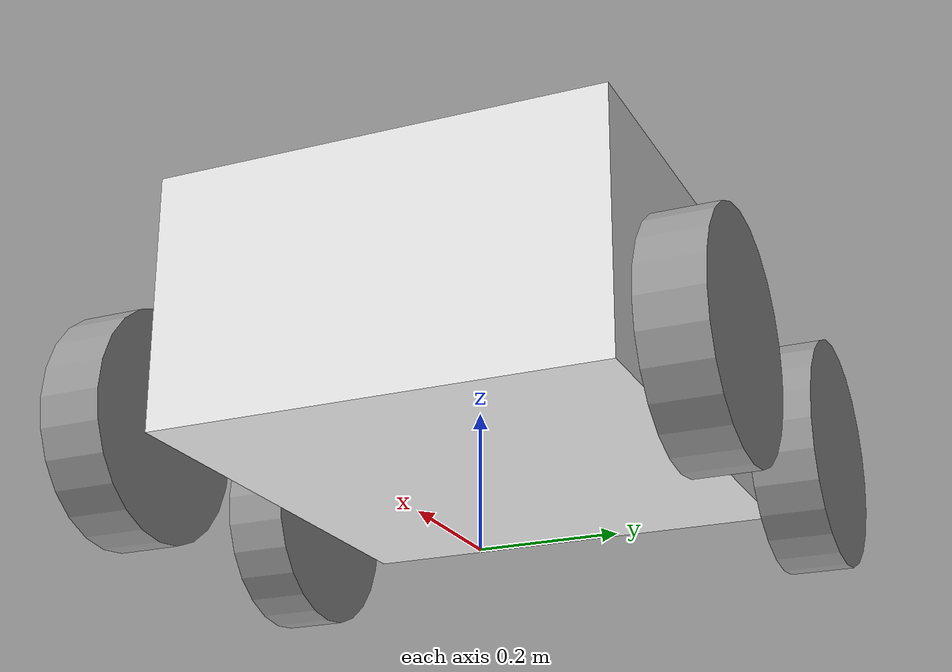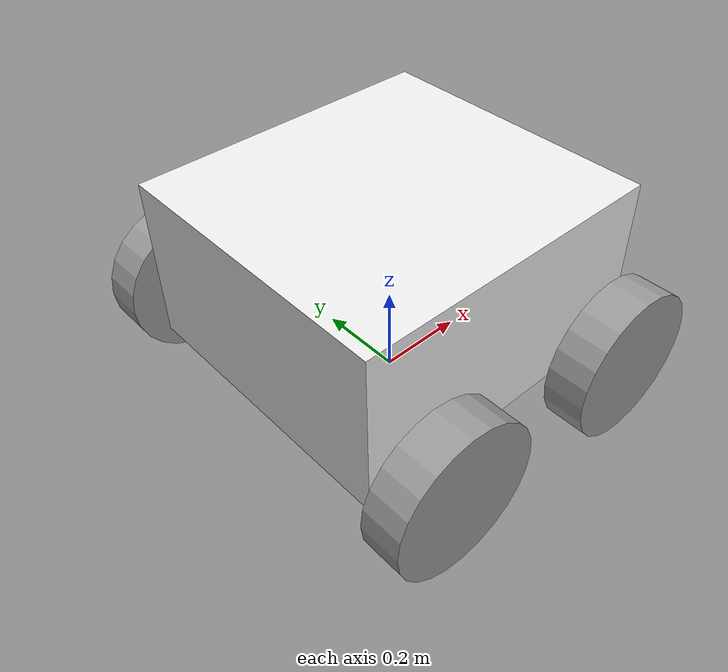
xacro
<?xml version="1.0"?>
<robot xmlns:xacro="http://www.ros.org/wiki/xacro">

    <!-- PARÁMETROS DIMENSIONALES DEL ROBOT -->

    <!-- Dimensiones del chasis principal [metros] -->
    <xacro:property name="base_length" value="0.7"/>      <!-- Largo del chasis (100cm) -->
    <xacro:property name="base_width" value="0.651"/>        <!-- Ancho del chasis (50cm) -->
    <xacro:property name="base_height" value="0.37"/>       <!-- Altura del chasis (30cm) -->

    <!-- Dimensiones de las ruedas [metros] -->
    <xacro:property name="wheel_radius" value="0.165"/>      <!-- Radio de cada rueda (10cm) -->
    <xacro:property name="wheel_length" value="0.09"/>     <!-- Grosor/ancho de rueda (5cm) -->

    <!-- Posicionamiento de ruedas [metros] -->
    <xacro:property name="wheel_y_offset" value="${base_width / 2.0 + wheel_length / 2 + 0.04}"/>  <!-- Distancia desde centro a rueda (4.85cm) -->
    <xacro:property name="wheel_x_offset" value="0.24"/> <!-- Desplazamiento longitudinal (20cm) -->
    <xacro:property name="wheel_z_offset" value="0.05"/>

    <!-- ESTRUCTURA PRINCIPAL DEL ROBOT -->

    <!-- Frame de referencia en el suelo -->
    <link name="base_footprint"/>

    <!-- Chasis principal del robot -->
    <link name="base_link">
        <visual>
            <geometry>
                <box size="${base_length} ${base_width} ${base_height}"/>
            </geometry>
            <!-- Posición: centro del chasis a la mitad de su altura -->
            <origin xyz="0 0 ${base_height / 2.0 }" rpy="0 0 0"/>
            <material name="white"/>
        </visual>
        <!-- Propiedades de inercia para simulación física -->
        <!-- m: masa [kg], l/w/h: dimensiones [m], xyz: centro de masa, rpy: orientación -->
        <xacro:box_inertia m="5.0" l="${2*base_length}" w="${2*base_width}" h="${2*base_height}"
         xyz="0 0 ${2*base_height / 2.0}" rpy="0 0 0" />
        <collision>
            <geometry>
                <box size="${base_length} ${base_width} ${base_height}"/>
            </geometry>
            <origin xyz="0 0 ${base_height / 2.0}" rpy="0 0 0"/>
        </collision>
    </link>

    <!-- MACRO PARA CREAR RUEDAS IDÉNTICAS -->

    <xacro:macro name="wheel_link" params="prefix">
        <link name="${prefix}_wheel_link">
            <visual>
                <geometry>
                    <!-- Rueda como cilindro: radius=radio, length=ancho -->
                    <cylinder radius="${wheel_radius}" length="${wheel_length}"/>
                </geometry>
                <!-- Rotación 90° en X para que el cilindro quede vertical -->
                <origin xyz="0 0 0" rpy="${pi/2.0} 0 0"/>
                <material name="grey"/>
            </visual>
            <!-- Inercia de cilindro para simulación realista -->
            <xacro:cylinder_inertia m="1.0" r="${2*wheel_radius}" h="${2*wheel_length}" xyz="0 0 0" rpy="${pi/2.0} 0 0"/>
            <collision>
                <geometry>
                    <cylinder radius="${wheel_radius}" length="${wheel_length}"/>
                </geometry>
                <origin xyz="0 0 0" rpy="${pi/2.0} 0 0"/>
            </collision>
        </link>
    </xacro:macro>

    <!-- CREACIÓN DE LAS 4 RUEDAS -->

    <!-- Ruedas delanteras -->
    <xacro:wheel_link prefix="front_left"/>
    <xacro:wheel_link prefix="front_right"/>

    <!-- Ruedas traseras -->
    <xacro:wheel_link prefix="rear_left"/>
    <xacro:wheel_link prefix="rear_right"/>

    <!-- JOINTS Y CONEXIONES -->

    <!-- Conexión base_footprint → base_link (fija) -->
    <joint name="base_joint" type="fixed">
        <parent link="base_footprint"/>
        <child link="base_link"/>
        <!-- Posición: base_link elevado al radio de la rueda -->
        <origin xyz="0 0 0.105" rpy="0 0 0"/>
    </joint>

    <!-- JOINTS DE RUEDAS DELANTERAS (tipo continuous = rotación continua) -->

    <!-- Rueda delantera derecha -->
    <joint name="base_front_right_wheel_joint" type="fixed">
        <parent link="base_link"/>
        <child link="front_right_wheel_link"/>
        <!-- Posición: esquina delantera derecha del chasis -->
        <origin xyz="${wheel_x_offset} ${-wheel_y_offset} ${wheel_z_offset}" rpy="0 0 0"/>
        <!-- Eje de rotación: Y (ruedas giran alrededor del eje longitudinal) -->
        <!--axis xyz="0 1 0"/-->
        <!-- Límites: velocity [rad/s], effort [Nm] -->
        <!--limit velocity="100" effort="100"/-->
    </joint>

    <!-- Rueda delantera izquierda -->
    <joint name="base_front_left_wheel_joint" type="fixed">
        <parent link="base_link"/>
        <child link="front_left_wheel_link"/>
        <!-- Posición: esquina delantera izquierda del chasis -->
        <origin xyz="${wheel_x_offset} ${wheel_y_offset} ${wheel_z_offset}" rpy="0 0 0"/>
    </joint>

    <!-- JOINTS DE RUEDAS TRASERAS -->

    <!-- Rueda trasera derecha -->
    <joint name="base_rear_right_wheel_joint" type="fixed">
        <parent link="base_link"/>
        <child link="rear_right_wheel_link"/>
        <!-- Posición: esquina trasera derecha del chasis -->
        <origin xyz="${-wheel_x_offset} ${-wheel_y_offset} ${wheel_z_offset}" rpy="0 0 0"/>
    </joint>

    <!-- Rueda trasera izquierda -->
    <joint name="base_rear_left_wheel_joint" type="fixed">
        <parent link="base_link"/>
        <child link="rear_left_wheel_link"/>
        <!-- Posición: esquina trasera izquierda del chasis -->
        <origin xyz="${-wheel_x_offset} ${wheel_y_offset} ${wheel_z_offset}" rpy="0 0 0"/>
    </joint>

</robot>
